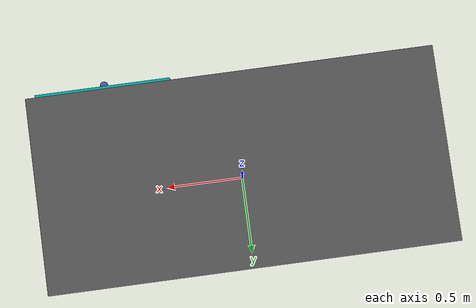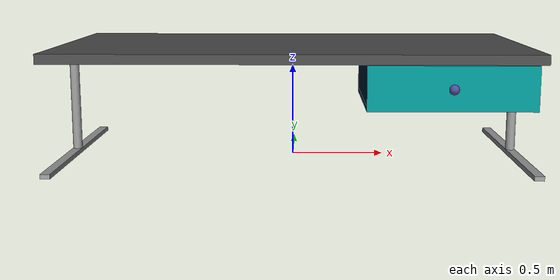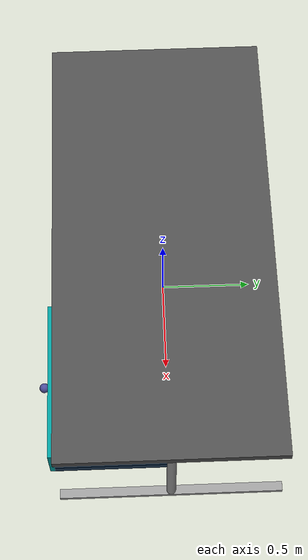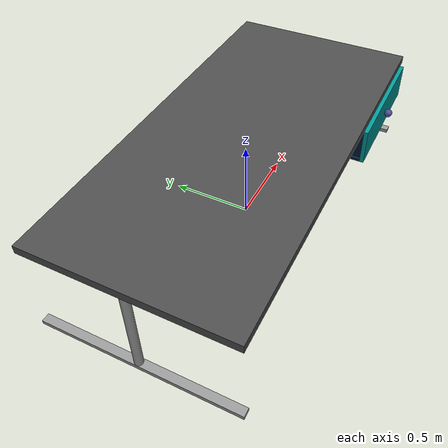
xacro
<?xml version="1.0"?>

<robot name="desk" xmlns:xacro="http://www.ros.org/wiki/xacro">

	<material name="dark_gray">
		<color rgba="0.3 0.3 0.3 1"/>
	</material>
	<material name="light_gray">
		<color rgba="0.6 0.6 0.6 1"/>
	</material>
	<material name="marine">
		<color rgba="0 0.1 0.2 1"/>
	</material>
	<material name="light_turquoise">
		<color rgba="0 0.6 0.6 1"/>
	</material>
	<material name="light_purple">
		<color rgba="0.3 0.3 0.6 1"/>
	</material>

	<xacro:property name="scene_orientation" value="0 0 0"/> <!-- Must not be modified -->

	<!-- ******************** Build table ******************** -->

	<!-- xacro properties -->

	<xacro:property name="board_posX" value="0"/>
	<xacro:property name="board_posY" value="0"/>
	<xacro:property name="board_posZ" value="0.6"/>

	<xacro:property name="board_sizeX" value="2.5"/>
	<xacro:property name="board_sizeY" value="1.2"/>
	<xacro:property name="board_sizeZ" value="0.05"/>

	<xacro:property name="leg_foot_sizeX" value="0.05"/>
	<xacro:property name="leg_foot_sizeY" value="${board_sizeY}"/>
	<xacro:property name="leg_foot_sizeZ" value="0.025"/>
	<xacro:property name="leg_foot_size" value="${leg_foot_sizeX} ${leg_foot_sizeY} ${leg_foot_sizeZ}"/>

	<xacro:property name="leg_body_length" value="${board_posZ - leg_foot_sizeZ - (board_sizeZ/2)}"/>
	<xacro:property name="leg_body_radius" value="${leg_foot_sizeX/2}"/>

	<xacro:property name="board_size" value="${board_sizeX} ${board_sizeY} ${board_sizeZ}"/>
	<xacro:property name="board_position" value="${board_posX} ${board_posY} ${board_posZ}"/>

	<xacro:property name="rleg_posX" value="${board_posX + ((board_sizeX/2) - leg_body_radius)}"/>
	<xacro:property name="rleg_posY" value="${board_posY}"/>
	<xacro:property name="rleg_body_position" value="${rleg_posX} ${rleg_posY} ${(leg_body_length/2)+leg_foot_sizeZ}"/>
	<xacro:property name="rleg_foot_position" value="${rleg_posX} ${rleg_posY} ${leg_foot_sizeZ/2}"/>

	<xacro:property name="lleg_posX" value="${board_posX - ((board_sizeX/2) - leg_body_radius)}"/>
	<xacro:property name="lleg_posY" value="${board_posY}"/>
	<xacro:property name="lleg_body_position" value="${lleg_posX} ${lleg_posY} ${(leg_body_length/2)+leg_foot_sizeZ}"/>
	<xacro:property name="lleg_foot_position" value="${lleg_posX} ${lleg_posY} ${leg_foot_sizeZ/2}"/>

	<!-- Board -->
	<link name="board">
		<visual>
			<geometry>
				<box size="${board_size}"/>
			</geometry>
			<material name="dark_gray"/>
			<origin xyz="${board_position}" rpy="${scene_orientation}"/>
		</visual>
		<collision>
			<geometry>
				<box size="${board_size}"/>
			</geometry>
			<origin xyz="${board_position}" rpy="${scene_orientation}"/>
		</collision>
	</link>

	<!-- Right table leg -->
	<link name="rleg_body">
		<visual>
			<geometry>
				<cylinder length="${leg_body_length}" radius="${leg_body_radius}"/>
			</geometry>
			<material name="light_gray"/>
			<origin xyz="${rleg_body_position}" rpy="${scene_orientation}"/>
		</visual>
		<collision>
			<geometry>
				<cylinder length="${leg_body_length}" radius="${leg_body_radius}"/>
			</geometry>
			<origin xyz="${rleg_body_position}" rpy="${scene_orientation}"/>
		</collision>
	</link>

	<link name="rleg_foot">
		<visual>
			<geometry>
				<box size="${leg_foot_size}"/>
			</geometry>
			<material name="light_gray"/>
			<origin xyz="${rleg_foot_position}" rpy="${scene_orientation}"/>
		</visual>
		<collision>
			<geometry>
				<box size="${leg_foot_size}"/>
			</geometry>
			<origin xyz="${rleg_foot_position}" rpy="${scene_orientation}"/>
		</collision>
	</link>

	<joint name="rleg_board_body_joint" type="fixed">
		<parent link="board"/>
		<child link="rleg_body"/>
	</joint>

	<joint name="rleg_body_foot_joint" type="fixed">
		<parent link="rleg_body"/>
		<child link="rleg_foot"/>
	</joint>

	<!-- Left table leg -->
	<link name="lleg_body">
		<visual>
			<geometry>
				<cylinder length="${leg_body_length}" radius="${leg_body_radius}"/>
			</geometry>
			<material name="light_gray"/>
			<origin xyz="${lleg_body_position}" rpy="${scene_orientation}"/>
		</visual>
		<collision>
			<geometry>
				<cylinder length="${leg_body_length}" radius="${leg_body_radius}"/>
			</geometry>
			<origin xyz="${lleg_body_position}" rpy="${scene_orientation}"/>
		</collision>
	</link>

	<link name="lleg_foot">
		<visual>
			<geometry>
				<box size="${leg_foot_size}"/>
			</geometry>
			<material name="light_gray"/>
			<origin xyz="${lleg_foot_position}" rpy="${scene_orientation}"/>
		</visual>
		<collision>
			<geometry>
				<box size="${leg_foot_size}"/>
			</geometry>
			<origin xyz="${lleg_foot_position}" rpy="${scene_orientation}"/>
		</collision>
	</link>

	<joint name="lleg_board_body_joint" type="fixed">
		<parent link="board"/>
		<child link="lleg_body"/>
	</joint>

	<joint name="lleg_body_foot_joint" type="fixed">
		<parent link="lleg_body"/>
		<child link="lleg_foot"/>
	</joint>

	<!-- ******************** Build case ******************** -->

	<!-- xacro properties -->
	<xacro:property name="planks_thickness" value="0.025"/>

	<xacro:property name="background_plank_sizeX" value="${board_sizeX/3}"/>
	<xacro:property name="background_plank_sizeY" value="${planks_thickness}"/>
	<xacro:property name="background_plank_sizeZ" value="${board_posZ/3}"/>
	<xacro:property name="background_plank_size" value="${background_plank_sizeX} ${background_plank_sizeY} ${background_plank_sizeZ}"/>
	<xacro:property name="background_plank_posX" value="${board_posX + (board_sizeX/2) - (background_plank_sizeX/2) - (leg_body_radius*2)}"/>
	<xacro:property name="background_plank_posY" value="${board_posY + (background_plank_sizeY/2)}"/>
	<xacro:property name="background_plank_posZ" value="${board_posZ - (board_sizeZ/2) - (background_plank_sizeZ/2)}"/>
	<xacro:property name="background_plank_position" value="${background_plank_posX} ${background_plank_posY} ${background_plank_posZ}"/>

	<xacro:property name="bottom_plank_sizeX" value="${background_plank_sizeX}"/>
	<xacro:property name="bottom_plank_sizeY" value="${(board_sizeY/2) + background_plank_sizeY}"/>
	<xacro:property name="bottom_plank_sizeZ" value="${planks_thickness}"/>
	<xacro:property name="bottom_plank_size" value="${bottom_plank_sizeX} ${bottom_plank_sizeY} ${bottom_plank_sizeZ}"/>
	<xacro:property name="bottom_plank_posX" value="${background_plank_posX}"/>
	<xacro:property name="bottom_plank_posY" value="${background_plank_posY + (background_plank_sizeY/2) - (bottom_plank_sizeY/2)}"/>
	<xacro:property name="bottom_plank_posZ" value="${background_plank_posZ - (background_plank_sizeZ/2) - (bottom_plank_sizeZ/2)}"/>
	<xacro:property name="bottom_plank_position" value="${bottom_plank_posX} ${bottom_plank_posY} ${bottom_plank_posZ}"/>

	<xacro:property name="side_planks_sizeX" value="${planks_thickness}"/>
	<xacro:property name="side_planks_sizeY" value="${bottom_plank_sizeY - background_plank_sizeY}"/>
	<xacro:property name="side_planks_sizeZ" value="${background_plank_sizeZ}"/>
	<xacro:property name="side_planks_size" value="${side_planks_sizeX} ${side_planks_sizeY} ${side_planks_sizeZ}"/>

	<xacro:property name="rside_plank_posX" value="${bottom_plank_posX + (bottom_plank_sizeX/2) - (side_planks_sizeX/2)}"/>
	<xacro:property name="rside_plank_posY" value="${background_plank_posY - (background_plank_sizeY/2) - (side_planks_sizeY/2)}"/>
	<xacro:property name="rside_plank_posZ" value="${bottom_plank_posZ + (bottom_plank_sizeZ/2) + (side_planks_sizeZ/2)}"/>
	<xacro:property name="rside_plank_position" value="${rside_plank_posX} ${rside_plank_posY} ${rside_plank_posZ}"/>
	<xacro:property name="lside_plank_posX" value="${bottom_plank_posX - (bottom_plank_sizeX/2) + (side_planks_sizeX/2)}"/>
	<xacro:property name="lside_plank_posY" value="${background_plank_posY - (background_plank_sizeY/2) - (side_planks_sizeY/2)}"/>
	<xacro:property name="lside_plank_posZ" value="${bottom_plank_posZ + (bottom_plank_sizeZ/2) + (side_planks_sizeZ/2)}"/>
	<xacro:property name="lside_plank_position" value="${lside_plank_posX} ${lside_plank_posY} ${lside_plank_posZ}"/>

	<!-- Background plank -->
	<link name="background_plank">
		<visual>
			<geometry>
				<box size="${background_plank_size}"/>
			</geometry>
			<material name="marine"/>
			<origin xyz="${background_plank_position}" rpy="${scene_orientation}"/>
		</visual>
		<collision>
			<geometry>
				<box size="${background_plank_size}"/>
			</geometry>
			<origin xyz="${background_plank_position}" rpy="${scene_orientation}"/>
		</collision>
	</link>

	<joint name="case_board_background_plank_joint" type="fixed">
		<parent link="board"/>
		<child link="background_plank"/>
	</joint>

	<!-- Bottom plank -->
	<link name="bottom_plank">
		<visual>
			<geometry>
				<box size="${bottom_plank_size}"/>
			</geometry>
			<material name="marine"/>
			<origin xyz="${bottom_plank_position}" rpy="${scene_orientation}"/>
		</visual>
		<collision>
			<geometry>
				<box size="${bottom_plank_size}"/>
			</geometry>
			<origin xyz="${bottom_plank_position}" rpy="${scene_orientation}"/>
		</collision>
	</link>

	<joint name="case_background_bottom_joint" type="fixed">
		<parent link="background_plank"/>
		<child link="bottom_plank"/>
	</joint>

	<!-- Right side plank -->
	<link name="right_side_plank">
		<visual>
			<geometry>
				<box size="${side_planks_size}"/>
			</geometry>
			<material name="marine"/>
			<origin xyz="${rside_plank_position}" rpy="${scene_orientation}"/>
		</visual>
		<collision>
			<geometry>
				<box size="${side_planks_size}"/>
			</geometry>
			<origin xyz="${rside_plank_position}" rpy="${scene_orientation}"/>
		</collision>
	</link>

	<joint name="case_bottom_right_side_joint" type="fixed">
		<parent link="bottom_plank"/>
		<child link="right_side_plank"/>
	</joint>

	<!-- Left side plank -->
	<link name="left_side_plank">
		<visual>
			<geometry>
				<box size="${side_planks_size}"/>
			</geometry>
			<material name="marine"/>
			<origin xyz="${lside_plank_position}" rpy="${scene_orientation}"/>
		</visual>
		<collision>
			<geometry>
				<box size="${side_planks_size}"/>
			</geometry>
			<origin xyz="${lside_plank_position}" rpy="${scene_orientation}"/>
		</collision>
	</link>

	<joint name="case_bottom_left_side_joint" type="fixed">
		<parent link="bottom_plank"/>
		<child link="left_side_plank"/>
	</joint>

	<!-- ******************** Build drawer ******************** -->

	<!-- xacro properties -->
	<xacro:property name="drawer_bottom_sizeX" value="${bottom_plank_sizeX - (2*side_planks_sizeX)}"/>
	<xacro:property name="drawer_bottom_sizeY" value="${bottom_plank_sizeY - background_plank_sizeY}"/>
	<xacro:property name="drawer_bottom_sizeZ" value="${planks_thickness}"/>
	<xacro:property name="drawer_bottom_size" value="${drawer_bottom_sizeX} ${drawer_bottom_sizeY} ${drawer_bottom_sizeZ}"/>
	<xacro:property name="drawer_bottom_posX" value="${bottom_plank_posX}"/>
	<xacro:property name="drawer_bottom_posY" value="${bottom_plank_posY - (background_plank_sizeY/2)}"/>
	<xacro:property name="drawer_bottom_posZ" value="${bottom_plank_posZ + planks_thickness}"/>
	<xacro:property name="drawer_bottom_position" value="${drawer_bottom_posX} ${drawer_bottom_posY} ${drawer_bottom_posZ}"/>

	<xacro:property name="drawer_back_sizeX" value="${drawer_bottom_sizeX}"/>
	<xacro:property name="drawer_back_sizeY" value="${planks_thickness}"/>
	<xacro:property name="drawer_back_sizeZ" value="${background_plank_sizeZ - drawer_bottom_sizeZ}"/>
	<xacro:property name="drawer_back_size" value="${drawer_back_sizeX} ${drawer_back_sizeY} ${drawer_back_sizeZ}"/>

	<xacro:property name="drawer_front_sizeX" value="${background_plank_sizeX}"/>
	<xacro:property name="drawer_front_sizeY" value="${planks_thickness}"/>
	<xacro:property name="drawer_front_sizeZ" value="${background_plank_sizeZ + bottom_plank_sizeZ}"/>
	<xacro:property name="drawer_front_size" value="${drawer_front_sizeX} ${drawer_front_sizeY} ${drawer_front_sizeZ}"/>

	<xacro:property name="drawer_right_left_sizeX" value="${planks_thickness}"/>
	<xacro:property name="drawer_right_left_sizeY" value="${side_planks_sizeY - drawer_back_sizeY}"/>
	<xacro:property name="drawer_right_left_sizeZ" value="${drawer_back_sizeZ}"/>
	<xacro:property name="drawer_right_left_size" value="${drawer_right_left_sizeX} ${drawer_right_left_sizeY} ${drawer_right_left_sizeZ}"/>

	<xacro:property name="drawer_back_posX" value="${background_plank_posX}"/>
	<xacro:property name="drawer_back_posY" value="${background_plank_posY - background_plank_sizeY}"/>
	<xacro:property name="drawer_back_posZ" value="${background_plank_posZ + (drawer_bottom_sizeZ/2)}"/>
	<xacro:property name="drawer_back_position" value="${drawer_back_posX} ${drawer_back_posY} ${drawer_back_posZ}"/>
	<xacro:property name="drawer_front_posX" value="${drawer_back_posX}"/>
	<xacro:property name="drawer_front_posY" value="${drawer_bottom_posY - (drawer_bottom_sizeY/2) - (drawer_front_sizeY/2)}"/>
	<xacro:property name="drawer_front_posZ" value="${background_plank_posZ - (bottom_plank_sizeZ/2)}"/>
	<xacro:property name="drawer_front_position" value="${drawer_front_posX} ${drawer_front_posY} ${drawer_front_posZ}"/>

	<xacro:property name="drawer_right_posX" value="${rside_plank_posX - side_planks_sizeX}"/>
	<xacro:property name="drawer_right_posY" value="${drawer_bottom_posY - (drawer_back_sizeY/2)}"/>
	<xacro:property name="drawer_right_posZ" value="${drawer_back_posZ}"/>
	<xacro:property name="drawer_right_position" value="${drawer_right_posX} ${drawer_right_posY} ${drawer_right_posZ}"/>
	<xacro:property name="drawer_left_posX" value="${lside_plank_posX + side_planks_sizeX}"/>
	<xacro:property name="drawer_left_posY" value="${drawer_right_posY}"/>
	<xacro:property name="drawer_left_posZ" value="${drawer_right_posZ}"/>
	<xacro:property name="drawer_left_position" value="${drawer_left_posX} ${drawer_left_posY} ${drawer_left_posZ}"/>

	<xacro:property name="drawer_handle_radius" value="0.025"/>
	<xacro:property name="drawer_handle_posX" value="${drawer_front_posX}"/>
	<xacro:property name="drawer_handle_posY" value="${drawer_front_posY - (drawer_front_sizeY/2) - drawer_handle_radius}"/>
	<xacro:property name="drawer_handle_posZ" value="${drawer_front_posZ}"/>
	<xacro:property name="drawer_handle_position" value="${drawer_handle_posX} ${drawer_handle_posY} ${drawer_handle_posZ}"/>

	<!-- drawer bottom -->
	<link name="drawer_bottom">
		<visual>
			<geometry>
				<box size="${drawer_bottom_size}"/>
			</geometry>
			<material name="light_turquoise"/>
			<origin xyz="${drawer_bottom_position}" rpy="${scene_orientation}"/>
		</visual>
		<collision>
			<geometry>
				<box size="${drawer_bottom_size}"/>
			</geometry>
			<origin xyz="${drawer_bottom_position}" rpy="${scene_orientation}"/>
		</collision>
	</link>

	<joint name="drawer_bottom_joint" type="prismatic">
		<parent link="bottom_plank"/>
		<child link="drawer_bottom"/>
		<axis xyz="0 1 0"/>
		<limit effort="500" lower="${-drawer_bottom_sizeY/2}" upper="0" velocity="0.5"/>
		<origin xyz="0 0 0" rpy="0 0 0"/>
	</joint>

	<!-- drawer back -->
	<link name="drawer_back">
		<visual>
			<geometry>
				<box size="${drawer_back_size}"/>
			</geometry>
			<material name="light_turquoise"/>
			<origin xyz="${drawer_back_position}" rpy="${scene_orientation}"/>
		</visual>
		<collision>
			<geometry>
				<box size="${drawer_back_size}"/>
			</geometry>
			<origin xyz="${drawer_back_position}" rpy="${scene_orientation}"/>
		</collision>
	</link>

	<joint name="drawer_bottom_back_joint" type="fixed">
		<parent link="drawer_bottom"/>
		<child link="drawer_back"/>
	</joint>

	<!-- drawer right -->
	<link name="drawer_right">
		<visual>
			<geometry>
				<box size="${drawer_right_left_size}"/>
			</geometry>
			<material name="light_turquoise"/>
			<origin xyz="${drawer_right_position}" rpy="${scene_orientation}"/>
		</visual>
		<collision>
			<geometry>
				<box size="${drawer_right_left_size}"/>
			</geometry>
			<origin xyz="${drawer_right_position}" rpy="${scene_orientation}"/>
		</collision>
	</link>

	<joint name="drawer_bottom_right_joint" type="fixed">
		<parent link="drawer_bottom"/>
		<child link="drawer_right"/>
	</joint>

	<!-- drawer left -->
	<link name="drawer_left">
		<visual>
			<geometry>
				<box size="${drawer_right_left_size}"/>
			</geometry>
			<material name="light_turquoise"/>
			<origin xyz="${drawer_left_position}" rpy="${scene_orientation}"/>
		</visual>
		<collision>
			<geometry>
				<box size="${drawer_right_left_size}"/>
			</geometry>
			<origin xyz="${drawer_left_position}" rpy="${scene_orientation}"/>
		</collision>
	</link>

	<joint name="drawer_bottom_left_joint" type="fixed">
		<parent link="drawer_bottom"/>
		<child link="drawer_left"/>
	</joint>

	<!-- drawer front -->
	<link name="drawer_front">
		<visual>
			<geometry>
				<box size="${drawer_front_size}"/>
			</geometry>
			<material name="light_turquoise"/>
			<origin xyz="${drawer_front_position}" rpy="${scene_orientation}"/>
		</visual>
		<collision>
			<geometry>
				<box size="${drawer_front_size}"/>
			</geometry>
			<origin xyz="${drawer_front_position}" rpy="${scene_orientation}"/>
		</collision>
	</link>

	<joint name="drawer_bottom_front_joint" type="fixed">
		<parent link="drawer_bottom"/>
		<child link="drawer_front"/>
	</joint>

	<!-- drawer handle -->
	<link name="drawer_handle">
		<visual>
			<geometry>
				<sphere radius="${drawer_handle_radius}"/>
			</geometry>
			<material name="light_purple"/>
			<origin xyz="${drawer_handle_position}" rpy="${scene_orientation}"/>
		</visual>
		<collision>
			<geometry>
				<sphere radius="${drawer_handle_radius}"/>
			</geometry>
			<origin xyz="${drawer_handle_position}" rpy="${scene_orientation}"/>
		</collision>
	</link>

	<joint name="drawer_front_handle_joint" type="fixed">
		<parent link="drawer_front"/>
		<child link="drawer_handle"/>
	</joint>

</robot>
